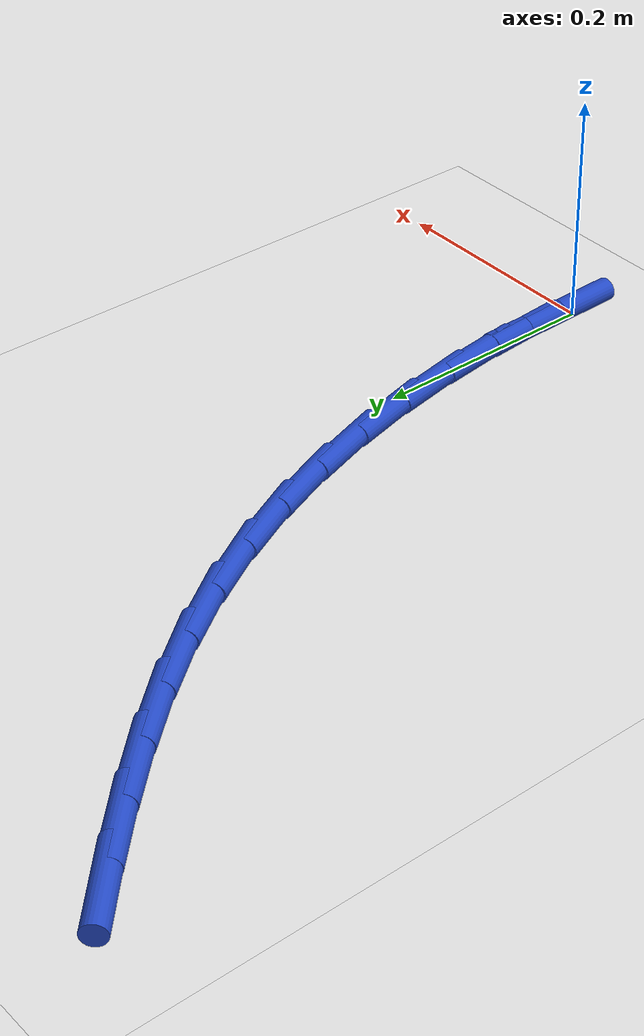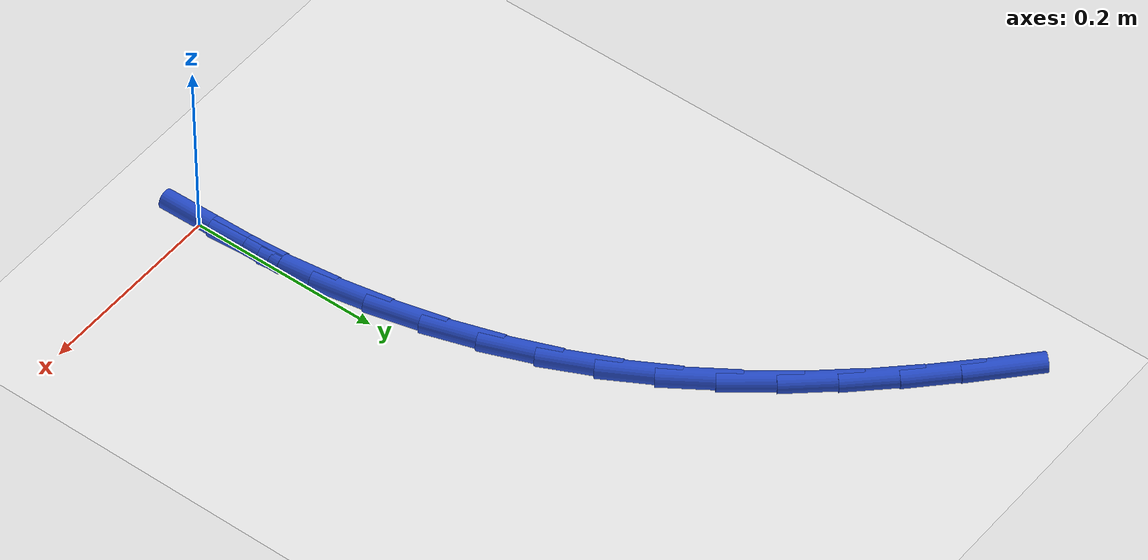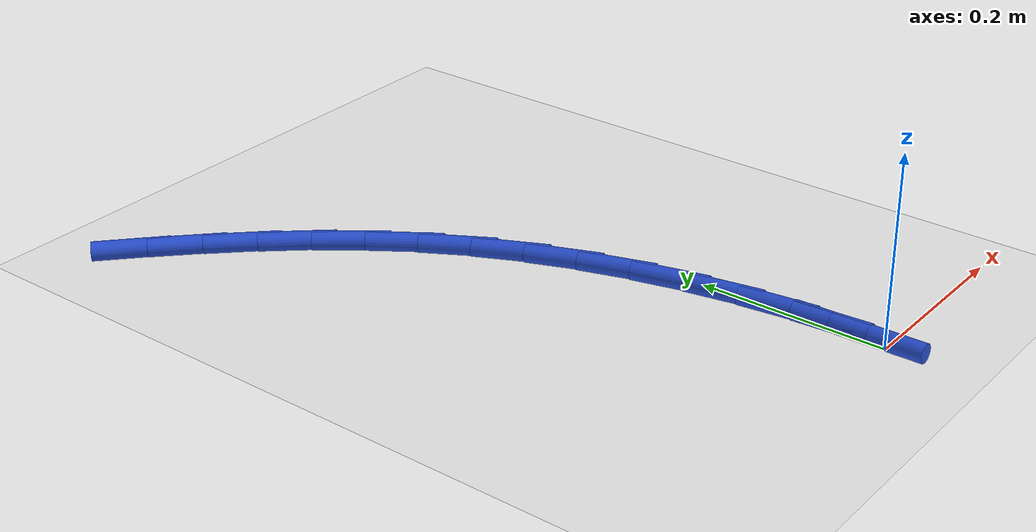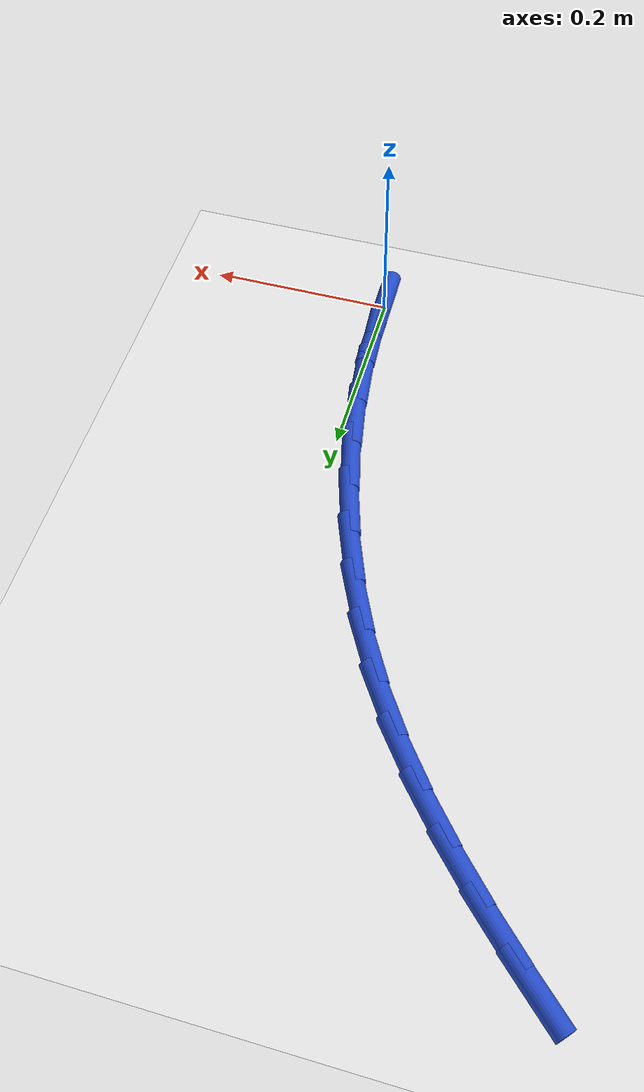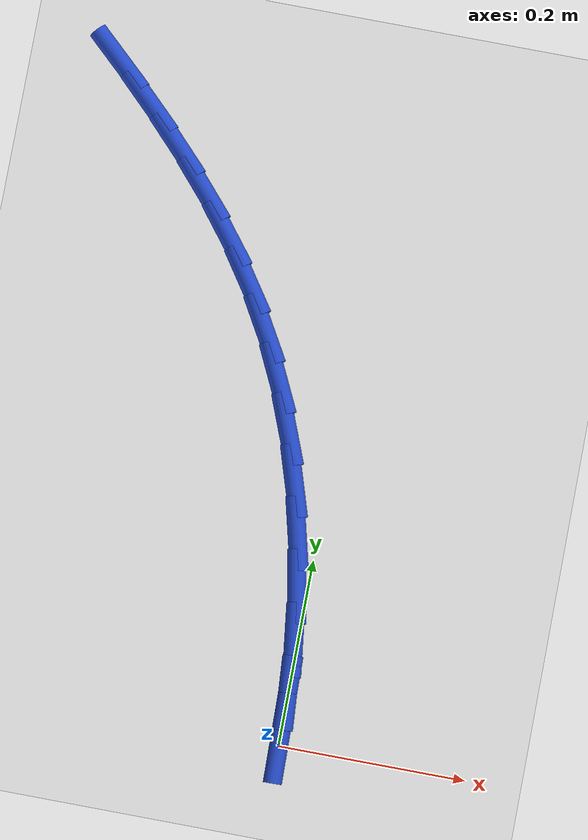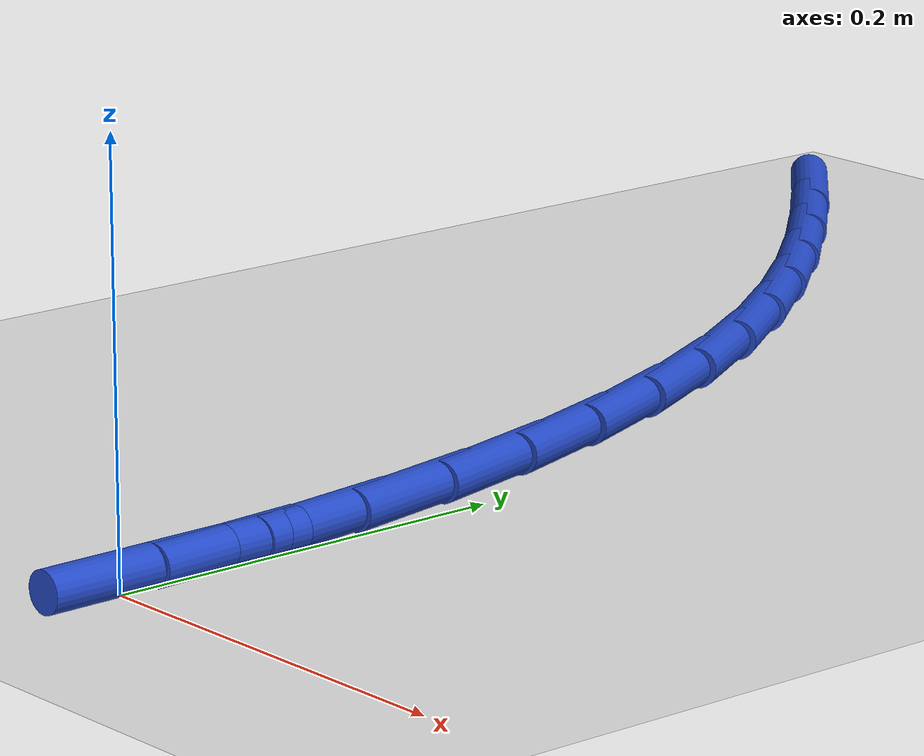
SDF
<sdf version="1.6">
 <world name="default">
  <model name="ground_plane">
   <static>1</static>
   <link name="link">
    <collision name="collision">
     <geometry><plane><normal>0 0 1</normal><size>100 100</size></plane></geometry>
     <surface><friction><ode><mu>100</mu><mu2>50</mu2></ode></friction></surface>
    </collision>
    <visual name="visual">
     <cast_shadows>0</cast_shadows>
     <geometry><plane><normal>0 0 1</normal><size>100 100</size></plane></geometry>
     <material>
      <script><uri>file://media/materials/scripts/gazebo.material</uri><name>Gazebo/WhiteGlow</name></script>
     </material>
    </visual>
   </link>
  </model>
  <model name="line">
   <link name="link_0">
    <pose>1.5612511283791264e-17 5.551115123125783e-17 0.01 0 1.57 -1.5538105841430099</pose>
    <collision name="collision">
     <geometry><cylinder><radius>0.01</radius><length>0.08</length></cylinder></geometry>
    </collision>
    <visual name="visual">
     <material>
      <script><name>Gazebo/Blue</name><uri>file://media/materials/scripts/gazebo.material</uri></script>
     </material>
     <geometry><cylinder><radius>0.01</radius><length>0.08</length></cylinder></geometry>
    </visual>
   </link>
   <link name="link_1">
    <pose>-0.0009619250122935301 0.056625872659754 0.01 0 1.57 -1.5001810932505637</pose>
    <collision name="collision">
     <geometry><cylinder><radius>0.01</radius><length>0.08</length></cylinder></geometry>
    </collision>
    <visual name="visual">
     <material>
      <script><name>Gazebo/Blue</name><uri>file://media/materials/scripts/gazebo.material</uri></script>
     </material>
     <geometry><cylinder><radius>0.01</radius><length>0.08</length></cylinder></geometry>
    </visual>
   </link>
   <link name="link_2">
    <pose>-0.0049575567133014545 0.11311493133950602 0.01 0 1.57 -1.4447713281363692</pose>
    <collision name="collision">
     <geometry><cylinder><radius>0.01</radius><length>0.08</length></cylinder></geometry>
    </collision>
    <visual name="visual">
     <material>
      <script><name>Gazebo/Blue</name><uri>file://media/materials/scripts/gazebo.material</uri></script>
     </material>
     <geometry><cylinder><radius>0.01</radius><length>0.08</length></cylinder></geometry>
    </visual>
   </link>
   <link name="link_3">
    <pose>-0.012060304892631681 0.16917607571523452 0.01 0 1.57 -1.3870788011111643</pose>
    <collision name="collision">
     <geometry><cylinder><radius>0.01</radius><length>0.08</length></cylinder></geometry>
    </collision>
    <visual name="visual">
     <material>
      <script><name>Gazebo/Blue</name><uri>file://media/materials/scripts/gazebo.material</uri></script>
     </material>
     <geometry><cylinder><radius>0.01</radius><length>0.08</length></cylinder></geometry>
    </visual>
   </link>
   <link name="link_4">
    <pose>-0.022343579339892134 0.22451820546291773 0.01 0 1.57 -1.326611082003469</pose>
    <collision name="collision">
     <geometry><cylinder><radius>0.01</radius><length>0.08</length></cylinder></geometry>
    </collision>
    <visual name="visual">
     <material>
      <script><name>Gazebo/Blue</name><uri>file://media/materials/scripts/gazebo.material</uri></script>
     </material>
     <geometry><cylinder><radius>0.01</radius><length>0.08</length></cylinder></geometry>
    </visual>
   </link>
   <link name="link_5">
    <pose>-0.03588078984469074 0.27885022025853407 0.01 0 1.57 -1.2628956064927381</pose>
    <collision name="collision">
     <geometry><cylinder><radius>0.01</radius><length>0.08</length></cylinder></geometry>
    </collision>
    <visual name="visual">
     <material>
      <script><name>Gazebo/Blue</name><uri>file://media/materials/scripts/gazebo.material</uri></script>
     </material>
     <geometry><cylinder><radius>0.01</radius><length>0.08</length></cylinder></geometry>
    </visual>
   </link>
   <link name="link_6">
    <pose>-0.052745346196635415 0.33188101977806167 0.01 0 1.57 -1.1954974534820324</pose>
    <collision name="collision">
     <geometry><cylinder><radius>0.01</radius><length>0.08</length></cylinder></geometry>
    </collision>
    <visual name="visual">
     <material>
      <script><name>Gazebo/Blue</name><uri>file://media/materials/scripts/gazebo.material</uri></script>
     </material>
     <geometry><cylinder><radius>0.01</radius><length>0.08</length></cylinder></geometry>
    </visual>
   </link>
   <link name="link_7">
    <pose>-0.07301065818533409 0.3833195036974792 0.01 0 1.57 -1.124046740483854</pose>
    <collision name="collision">
     <geometry><cylinder><radius>0.01</radius><length>0.08</length></cylinder></geometry>
    </collision>
    <visual name="visual">
     <material>
      <script><name>Gazebo/Blue</name><uri>file://media/materials/scripts/gazebo.material</uri></script>
     </material>
     <geometry><cylinder><radius>0.01</radius><length>0.08</length></cylinder></geometry>
    </visual>
   </link>
   <link name="link_8">
    <pose>-0.0967501356003947 0.4328745716927646 0.01 0 1.57 -1.0483621497804123</pose>
    <collision name="collision">
     <geometry><cylinder><radius>0.01</radius><length>0.08</length></cylinder></geometry>
    </collision>
    <visual name="visual">
     <material>
      <script><name>Gazebo/Blue</name><uri>file://media/materials/scripts/gazebo.material</uri></script>
     </material>
     <geometry><cylinder><radius>0.01</radius><length>0.08</length></cylinder></geometry>
    </visual>
   </link>
   <link name="link_9">
    <pose>-0.1240338594941158 0.48025872299274014 0.01 0 1.57 -0.9735914776482352</pose>
    <collision name="collision">
     <geometry><cylinder><radius>0.01</radius><length>0.08</length></cylinder></geometry>
    </collision>
    <visual name="visual">
     <material>
      <script><name>Gazebo/Blue</name><uri>file://media/materials/scripts/gazebo.material</uri></script>
     </material>
     <geometry><cylinder><radius>0.01</radius><length>0.08</length></cylinder></geometry>
    </visual>
   </link>
   <link name="link_10">
    <pose>-0.15473212597339056 0.5254004956426123 0.01 0 1.57 -0.9082779056274186</pose>
    <collision name="collision">
     <geometry><cylinder><radius>0.01</radius><length>0.08</length></cylinder></geometry>
    </collision>
    <visual name="visual">
     <material>
      <script><name>Gazebo/Blue</name><uri>file://media/materials/scripts/gazebo.material</uri></script>
     </material>
     <geometry><cylinder><radius>0.01</radius><length>0.08</length></cylinder></geometry>
    </visual>
   </link>
   <link name="link_11">
    <pose>-0.18840552956825413 0.5685633256047514 0.01 0 1.57 -0.8534584664029894</pose>
    <collision name="collision">
     <geometry><cylinder><radius>0.01</radius><length>0.08</length></cylinder></geometry>
    </collision>
    <visual name="visual">
     <material>
      <script><name>Gazebo/Blue</name><uri>file://media/materials/scripts/gazebo.material</uri></script>
     </material>
     <geometry><cylinder><radius>0.01</radius><length>0.08</length></cylinder></geometry>
    </visual>
   </link>
   <link name="link_12">
    <pose>-0.22458801973211423 0.6100394616772762 0.01 0 1.57 -0.8090973490285253</pose>
    <collision name="collision">
     <geometry><cylinder><radius>0.01</radius><length>0.08</length></cylinder></geometry>
    </collision>
    <visual name="visual">
     <material>
      <script><name>Gazebo/Blue</name><uri>file://media/materials/scripts/gazebo.material</uri></script>
     </material>
     <geometry><cylinder><radius>0.01</radius><length>0.08</length></cylinder></geometry>
    </visual>
   </link>
   <link name="link_13">
    <pose>-0.2628135459183786 0.6501211526583054 0.01 0 1.57 -0.7749517800852165</pose>
    <collision name="collision">
     <geometry><cylinder><radius>0.01</radius><length>0.08</length></cylinder></geometry>
    </collision>
    <visual name="visual">
     <material>
      <script><name>Gazebo/Blue</name><uri>file://media/materials/scripts/gazebo.material</uri></script>
     </material>
     <geometry><cylinder><radius>0.01</radius><length>0.08</length></cylinder></geometry>
    </visual>
   </link>
   <link name="link_14">
    <pose>-0.30261605758045507 0.6891006473459578 0.01 0 1.57 -0.7507156231088982</pose>
    <collision name="collision">
     <geometry><cylinder><radius>0.01</radius><length>0.08</length></cylinder></geometry>
    </collision>
    <visual name="visual">
     <material>
      <script><name>Gazebo/Blue</name><uri>file://media/materials/scripts/gazebo.material</uri></script>
     </material>
     <geometry><cylinder><radius>0.01</radius><length>0.08</length></cylinder></geometry>
    </visual>
   </link>
   <link name="link_131">
    <pose>-0.0009515795768633185 0.05664367484352137 0.01 0 1.57 -1.553998509978319</pose>
    <collision name="collision">
     <geometry><cylinder><radius>0.01</radius><length>0.08</length></cylinder></geometry>
    </collision>
    <visual name="visual">
     <material>
      <script><name>Gazebo/Blue</name><uri>file://media/materials/scripts/gazebo.material</uri></script>
     </material>
     <geometry><cylinder><radius>0.01</radius><length>0.08</length></cylinder></geometry>
    </visual>
   </link>
  </model>
 </world>
</sdf>
